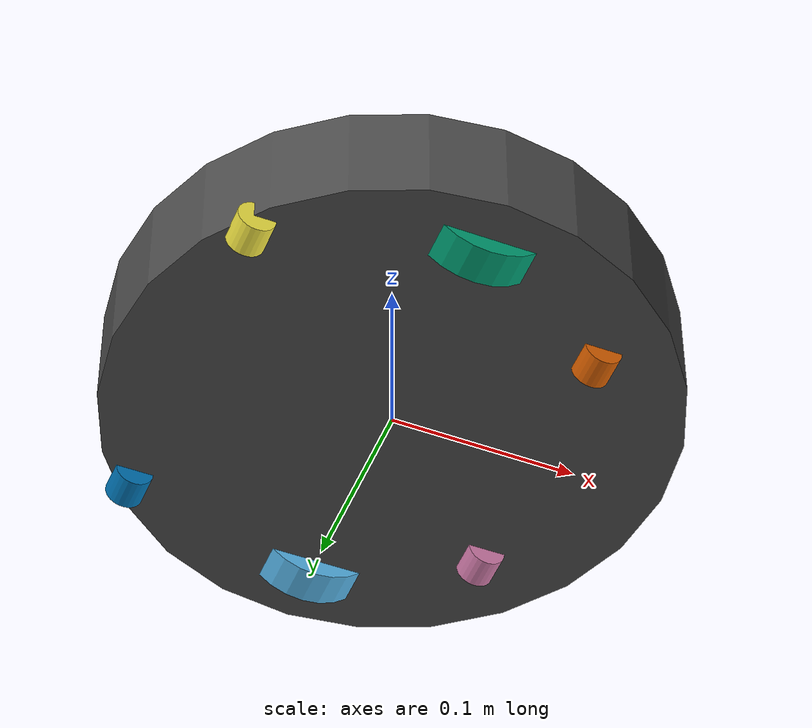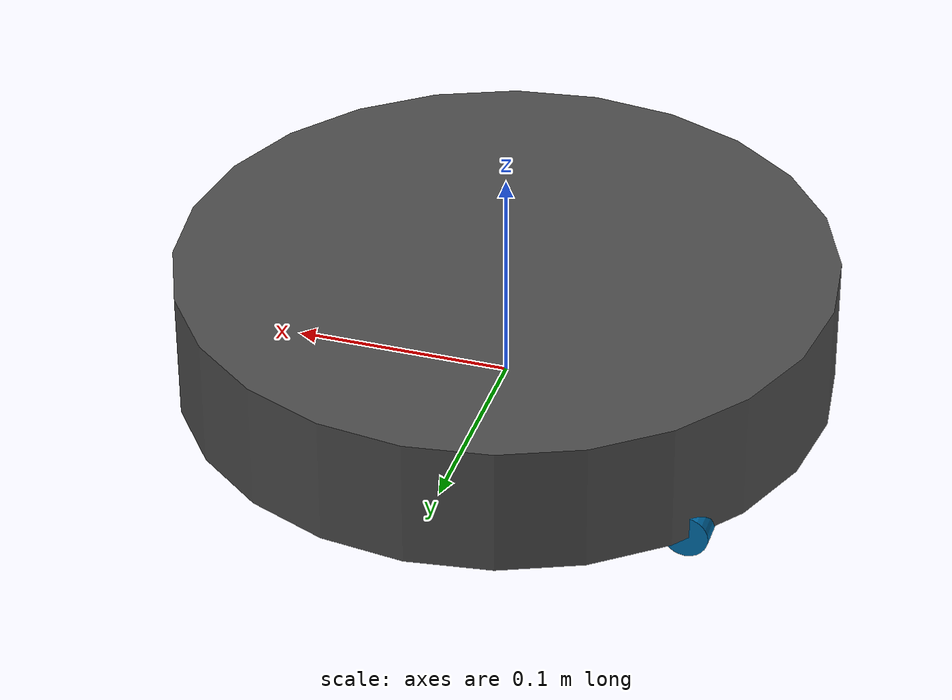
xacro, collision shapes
<?xml version="1.0"?>
<robot name="zeromess_z1_standalone"
       xmlns:sensor="http://playerstage.sourceforge.net/gazebo/xmlschema/#sensor"
       xmlns:controller="http://playerstage.sourceforge.net/gazebo/xmlschema/#controller"
       xmlns:interface="http://playerstage.sourceforge.net/gazebo/xmlschema/#interface"
       xmlns:xacro="http://ros.org/wiki/xacro">

  <!-- Defines the zeromess_z1 component tag. -->
  <xacro:include filename="$(find zeromess_simulations)/urdf/zeromess_z1.urdf.xacro" />
  <xacro:zeromess_z1/>
</robot>

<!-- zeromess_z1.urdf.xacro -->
<robot name="zeromess_z1" xmlns:xacro="http://ros.org/wiki/xacro">
  <xacro:include filename="$(find zeromess_simulations)/urdf/common_properties.urdf.xacro"/>
  <xacro:include filename="$(find zeromess_simulations)/urdf/zeromess_z1_gazebo.urdf.xacro"/>

  <!-- zeromess_z1 -->
  <xacro:macro name="zeromess_z1">
    <link name="base_link">
      <visual>
        <geometry>
          <mesh filename="package://zeromess_simulations/meshes/main_body.stl" scale="0.001 0.001 0.001"/>
        </geometry>
        <origin xyz="0 0 0" rpy="0 0 0"/>
        <material name="dark_grey"/>
      </visual>
      <collision>
        <geometry>
          <cylinder length="0.06" radius="0.15"/>
        </geometry>
        <origin xyz="0 0 0.03" rpy="0 0 0"/>
      </collision>
      <inertial>
        <origin xyz="0.01 0 0"/>
        <mass value="2.4"/>
        <inertia ixx="0.019995" ixy="0.0" ixz="0.0"
                 iyy="0.019995" iyz="0.0"
                 izz="0.03675" />
      </inertial>
    </link>

    <joint name="wheel_left_joint" type="continuous">
      <parent link="base_link"/>
      <child link="wheel_left_link"/>
      <origin xyz="0.00 ${0.235/2} 0.0250" rpy="0 0 0"/>
      <axis xyz="0 1 0"/>
    </joint>
    <link name="wheel_left_link">
      <visual>
        <geometry>
          <mesh filename="package://zeromess_simulations/meshes/wheel.dae"/>
        </geometry>
        <origin xyz="0 0 0" rpy="${M_PI_2} 0 0"/>
      </visual>
      <collision>
        <geometry>
          <cylinder length="0.0206" radius="0.035"/>
        </geometry>
        <origin xyz="0 0 0" rpy="${M_PI_2} 0 0"/>
      </collision>
      <inertial>
        <mass value="0.01" />
        <origin xyz="0 0 0" />
        <inertia ixx="0.001" ixy="0.0" ixz="0.0"
                 iyy="0.001" iyz="0.0"
                 izz="0.001" />
      </inertial>
    </link>

    <joint name="wheel_right_joint" type="continuous">
      <parent link="base_link"/>
      <child link="wheel_right_link"/>
      <origin xyz="0.00 -${0.235/2} 0.0250" rpy="0 0 0"/>
      <axis xyz="0 1 0"/>
    </joint>
    <link name="wheel_right_link">
      <visual>
        <geometry>
          <mesh filename="package://zeromess_simulations/meshes/wheel.dae"/>
        </geometry>
        <origin xyz="0 0 0" rpy="${M_PI_2} 0 0"/>
      </visual>
      <collision>
        <geometry>
          <cylinder length="0.0206" radius="0.035"/>
        </geometry>
        <origin xyz="0 0 0" rpy="${M_PI_2} 0 0"/>
      </collision>
      <inertial>
        <mass value="0.01" />
        <origin xyz="0 0 0" />
        <inertia ixx="0.001" ixy="0.0" ixz="0.0"
                 iyy="0.001" iyz="0.0"
                 izz="0.001" />
      </inertial>
    </link>

    <joint name="caster_back_right_joint" type="fixed">
      <parent link="base_link"/>
      <child link="caster_back_right_link"/>
      <origin xyz="-0.11 -${0.18/2} 0" rpy="${M_PI_2} 0 0"/>
    </joint>
    <link name="caster_back_right_link">
      <collision>
        <geometry>
          <cylinder length="0.0176" radius="0.01"/>
        </geometry>
        <origin xyz="0 0 0" rpy="0 0 0"/>
      </collision>
      <inertial>
        <mass value="0.01" />
        <origin xyz="0 0 0" />
        <inertia ixx="0.001" ixy="0.0" ixz="0.0"
                 iyy="0.001" iyz="0.0"
                 izz="0.001" />
      </inertial>
    </link>

    <joint name="caster_back_left_joint" type="fixed">
      <parent link="base_link"/>
      <child link="caster_back_left_link"/>
      <origin xyz="-0.11 ${0.18/2} 0" rpy="${M_PI_2} 0 0"/>
    </joint>
    <link name="caster_back_left_link">
      <collision>
        <geometry>
          <cylinder length="0.0176" radius="0.01"/>
        </geometry>
        <origin xyz="0 0 0" rpy="0 0 0"/>
      </collision>
      <inertial>
        <mass value="0.01" />
        <origin xyz="0 0 0" />
        <inertia ixx="0.001" ixy="0.0" ixz="0.0"
                 iyy="0.001" iyz="0.0"
                 izz="0.001" />
      </inertial>
    </link>

    <joint name="caster_front_right_joint" type="fixed">
      <parent link="base_link"/>
      <child link="caster_front_right_link"/>
      <origin xyz="0.08 -${0.15/2} 0" rpy="${M_PI_2} 0 0"/>
    </joint>
    <link name="caster_front_right_link">
      <collision>
        <geometry>
          <cylinder length="0.0176" radius="0.01"/>
        </geometry>
        <origin xyz="0 0 0" rpy="0 0 0"/>
      </collision>
      <inertial>
        <mass value="0.01" />
        <origin xyz="0 0 0" />
        <inertia ixx="0.001" ixy="0.0" ixz="0.0"
                 iyy="0.001" iyz="0.0"
                 izz="0.001" />
      </inertial>
    </link>

    <joint name="caster_front_left_joint" type="fixed">
      <parent link="base_link"/>
      <child link="caster_front_left_link"/>
      <origin xyz="0.08 ${0.15/2} 0" rpy="${M_PI_2} 0 0"/>
    </joint>
    <link name="caster_front_left_link">
      <collision>
        <geometry>
          <cylinder length="0.0176" radius="0.01"/>
        </geometry>
        <origin xyz="0 0 0" rpy="0 0 0"/>
      </collision>
      <inertial>
        <mass value="0.01" />
        <origin xyz="0 0 0" />
        <inertia ixx="0.001" ixy="0.0" ixz="0.0"
                 iyy="0.001" iyz="0.0"
                 izz="0.001" />
      </inertial>
    </link>

    <!-- zeromess_z1's sensors -->
    <joint name="imu_joint" type="fixed">
      <axis xyz="0 1 0"/>
      <origin xyz="0.08 0 0" rpy="0 0 0"/>
      <parent link="base_link"/>
      <child link="base_imu"/>
    </joint>
    <link name="base_imu">
      <inertial>
        <mass value="0.001"/>
        <origin xyz="0 0 0" rpy="0 0 0"/>
        <inertia ixx="0.0001" ixy="0" ixz="0"
                 iyy="0.000001" iyz="0"
                 izz="0.0001"/>
      </inertial>
    </link>

    <joint name="laser_joint" type="fixed">
      <origin xyz="0 0 0.166" rpy="0 0 0" />
      <parent link="base_link"/>
      <child link="front_lidar" />
    </joint>
    <link name="front_lidar">
      <inertial>
        <mass value="0.0001" />
        <origin xyz="0 0 0" />
        <inertia ixx="0.0001" ixy="0.0" ixz="0.0"
                 iyy="0.0001" iyz="0.0"
                 izz="0.0001" />
      </inertial>
    </link>

    <xacro:zeromess_z1_sim/>

  </xacro:macro>
</robot>

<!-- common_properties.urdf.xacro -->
<robot name="xacro_properties" xmlns:xacro="http://ros.org/wiki/xacro">
  <xacro:property name="M_PI" value="3.14159265359" />
  <xacro:property name="M_PI_2" value="1.570796326795" />
  <xacro:property name="M_PI_4" value="0.7853981633975" />
  <material name="red">
    <color rgba="0.3 0.3 0.3 1"/>
  </material>
</robot>
